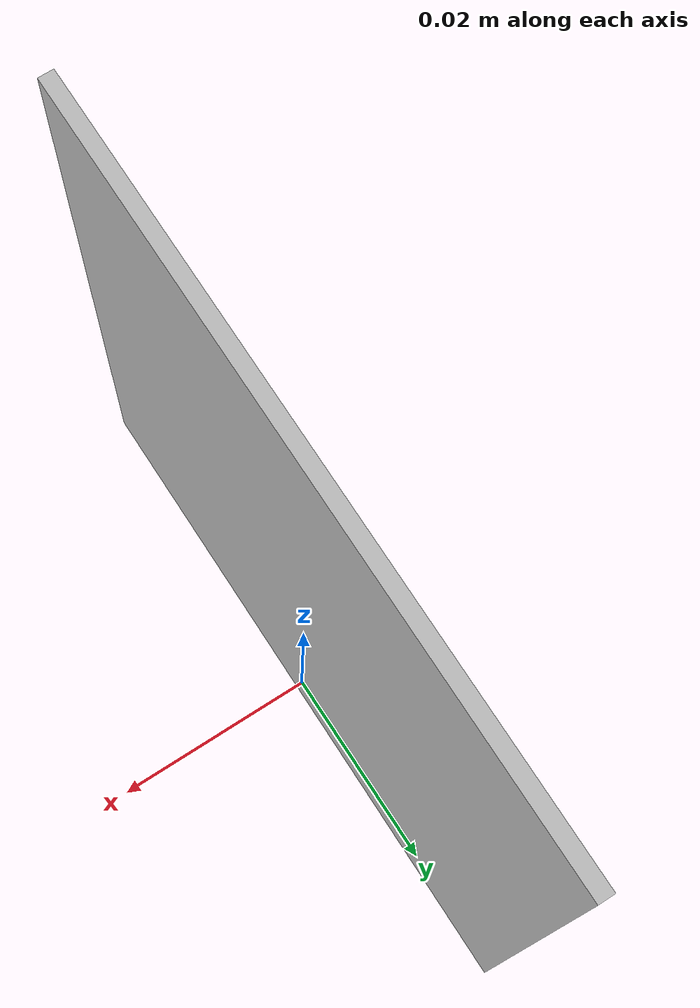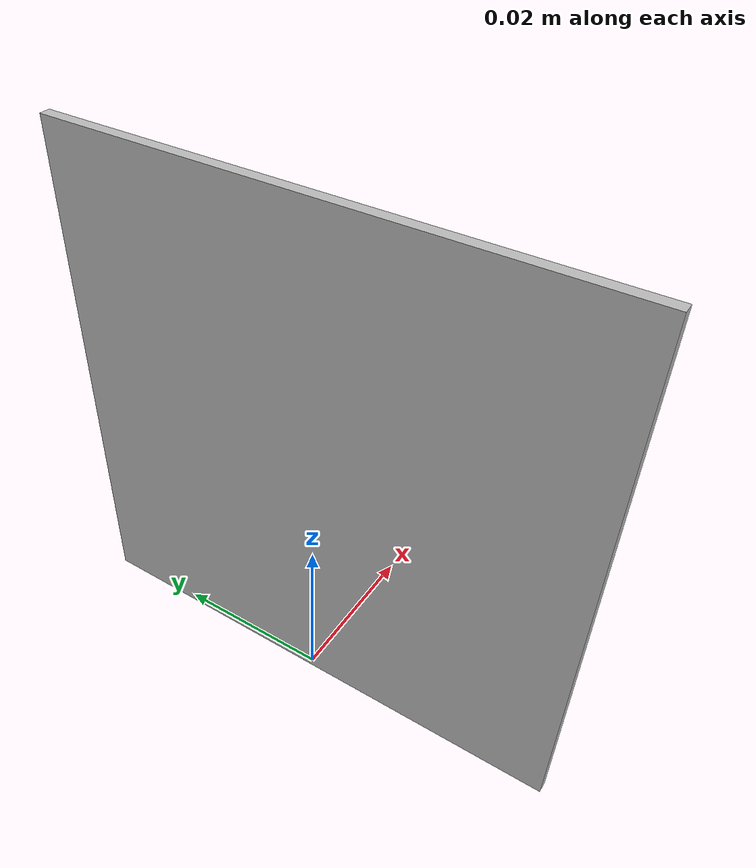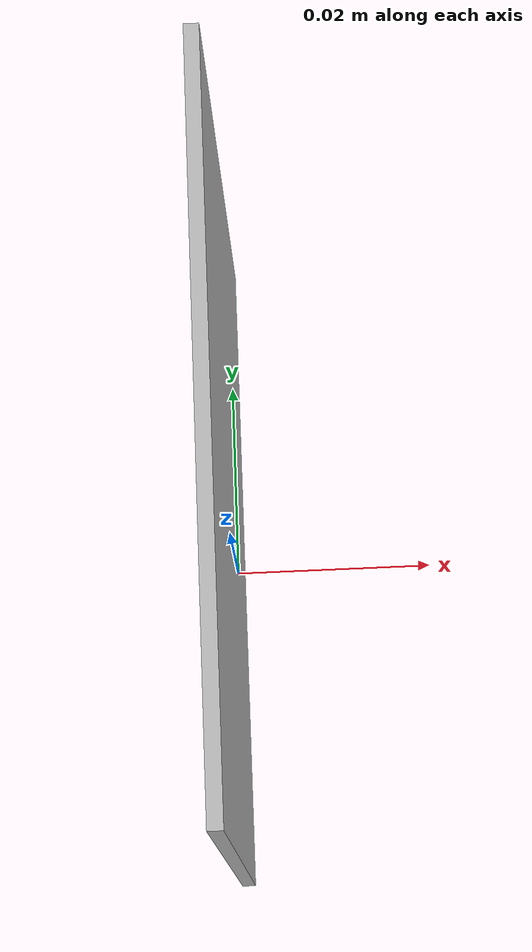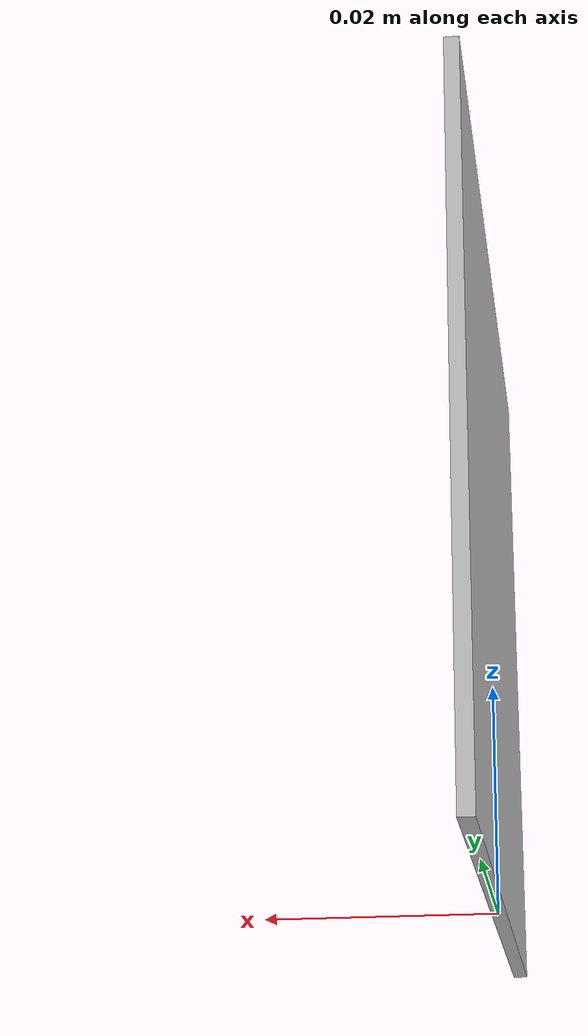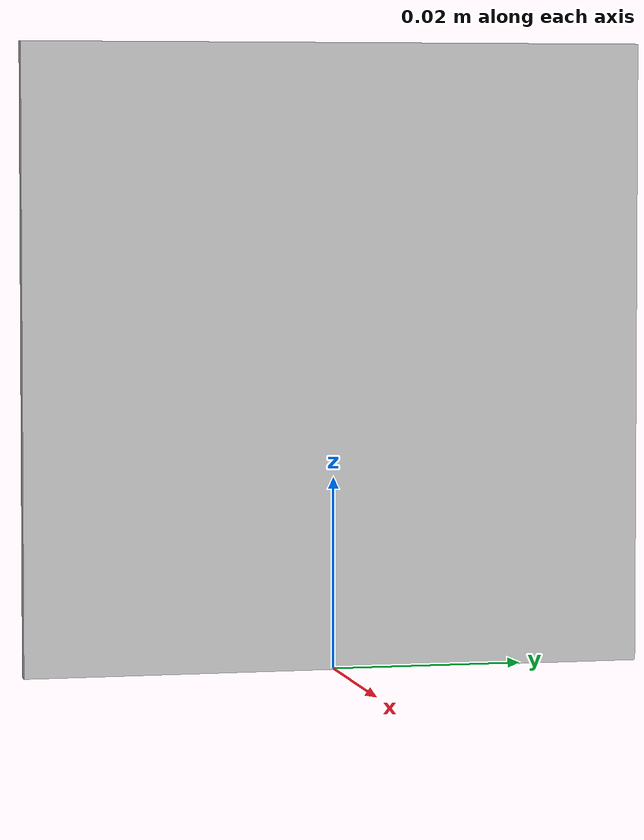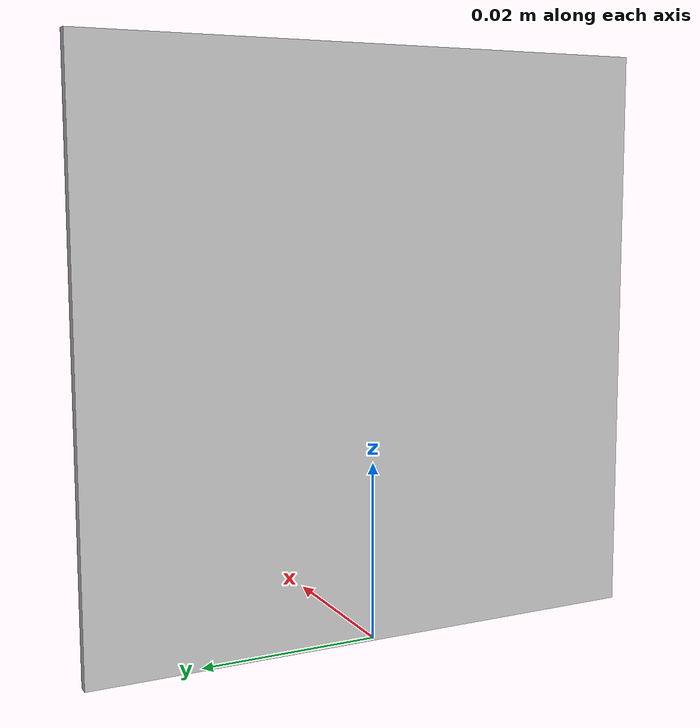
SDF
<?xml version="1.0" ?><sdf version="1.4">
  <model name="Marker14">
    <static>true</static>
    <link name="link">
      <visual name="visual">
        <geometry>
          <mesh>
            <uri>model://marker14/meshes/Marker14.dae</uri>
          <scale>0.13 0.13 0.13</scale></mesh>
        </geometry>
      </visual>
    </link>
  </model>
</sdf>
